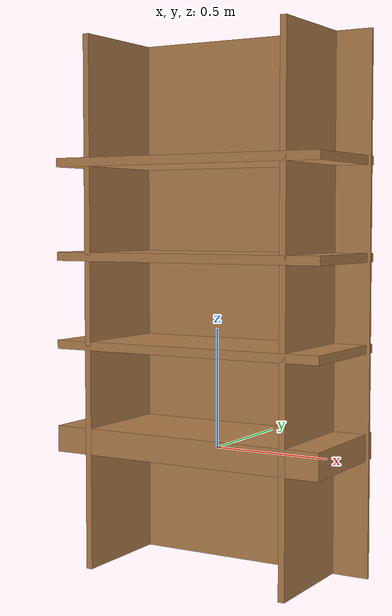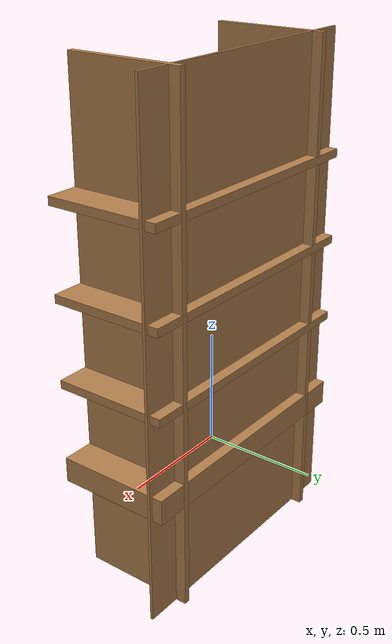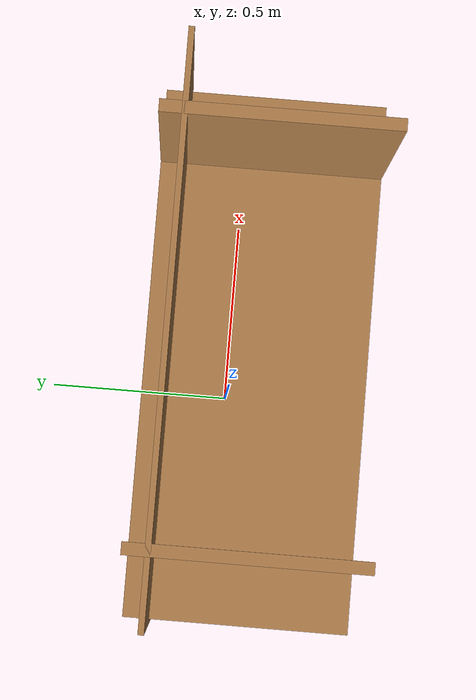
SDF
<?xml version='1.0'?>
<sdf version='1.7'>
  <model name='bookshelf'>
    <link name='link'>
      <inertial>
        <mass>3.22344</mass>
        <inertia>
          <ixx>0.0694544</ixx>
          <ixy>0</ixy>
          <ixz>0</ixz>
          <iyy>0.393153</iyy>
          <iyz>0</iyz>
          <izz>0.461871</izz>
        </inertia>
        <pose>0 0 0 0 -0 0</pose>
      </inertial>
      <self_collide>0</self_collide>
      <enable_wind>0</enable_wind>
      <kinematic>0</kinematic>
      <pose>0 0.152248 0 0 -0 0</pose>
      <visual name='visual1'>
        <pose>0 0.005 0.6 0 -0 0</pose>
        <geometry>
          <box>
            <size>1.23672 0.012678 2.21818</size>
          </box>
        </geometry>
        <material>
          <script>
            <uri>file://media/materials/scripts/gazebo.material</uri>
            <name>Gazebo/Wood</name>
          </script>
          <shader type='pixel'/>
        </material>
        <transparency>0</transparency>
        <cast_shadows>1</cast_shadows>
      </visual>
      <visual name='visual2'>
        <pose>0.45 -0.195 0.6 0 -0 0</pose>
        <geometry>
          <box>
            <size>0.027117 0.507139 2.21818</size>
          </box>
        </geometry>
        <material>
          <script>
            <uri>file://media/materials/scripts/gazebo.material</uri>
            <name>Gazebo/Wood</name>
          </script>
          <shader type='pixel'/>
        </material>
        <transparency>0</transparency>
        <cast_shadows>1</cast_shadows>
      </visual>
      <visual name='visual3'>
        <pose>-0.45 -0.195 0.6 0 -0 0</pose>
        <geometry>
          <box>
            <size>0.027117 0.507139 2.21818</size>
          </box>
        </geometry>
        <material>
          <script>
            <uri>file://media/materials/scripts/gazebo.material</uri>
            <name>Gazebo/Wood</name>
          </script>
          <shader type='pixel'/>
        </material>
        <transparency>0</transparency>
        <cast_shadows>1</cast_shadows>
      </visual>
      <visual name='visual4'>
        <pose>0 -0.195 0.03 0 -0 0</pose>
        <geometry>
          <box>
            <size>1.20923 0.507139 0.1109</size>
          </box>
        </geometry>
        <material>
          <script>
            <uri>file://media/materials/scripts/gazebo.material</uri>
            <name>Gazebo/Wood</name>
          </script>
          <shader type='pixel'/>
        </material>
        <transparency>0</transparency>
        <cast_shadows>1</cast_shadows>
      </visual>
      <visual name='visual5'>
        <pose>0 -0.195 1.19 0 -0 0</pose>
        <geometry>
          <box>
            <size>1.20923 0.507139 0.03702</size>
          </box>
        </geometry>
        <material>
          <script>
            <uri>file://media/materials/scripts/gazebo.material</uri>
            <name>Gazebo/Wood</name>
          </script>
          <shader type='pixel'/>
        </material>
        <transparency>0</transparency>
        <cast_shadows>1</cast_shadows>
      </visual>
      <visual name='visual6'>
        <pose>0 -0.195 0.43 0 -0 0</pose>
        <geometry>
          <box>
            <size>1.20923 0.507139 0.03702</size>
          </box>
        </geometry>
        <material>
          <script>
            <uri>file://media/materials/scripts/gazebo.material</uri>
            <name>Gazebo/Wood</name>
          </script>
          <shader type='pixel'/>
        </material>
        <transparency>0</transparency>
        <cast_shadows>1</cast_shadows>
      </visual>
      <visual name='visual7'>
        <pose>0 -0.195 0.8 0 -0 0</pose>
        <geometry>
          <box>
            <size>1.20923 0.507139 0.03702</size>
          </box>
        </geometry>
        <material>
          <script>
            <uri>file://media/materials/scripts/gazebo.material</uri>
            <name>Gazebo/Wood</name>
          </script>
          <shader type='pixel'/>
        </material>
        <transparency>0</transparency>
        <cast_shadows>1</cast_shadows>
      </visual>
      <collision name='back'>
        <laser_retro>0</laser_retro>
        <max_contacts>10</max_contacts>
        <pose>0 0.005 0.6 0 -0 0</pose>
        <geometry>
          <box>
            <size>1.23672 0.012678 2.21818</size>
          </box>
        </geometry>
        <surface>
          <friction>
            <ode>
              <mu>1</mu>
              <mu2>1</mu2>
              <fdir1>0 0 0</fdir1>
              <slip1>0</slip1>
              <slip2>0</slip2>
            </ode>
            <torsional>
              <coefficient>1</coefficient>
              <patch_radius>0</patch_radius>
              <surface_radius>0</surface_radius>
              <use_patch_radius>1</use_patch_radius>
              <ode>
                <slip>0</slip>
              </ode>
            </torsional>
          </friction>
          <bounce>
            <restitution_coefficient>0</restitution_coefficient>
            <threshold>1e+06</threshold>
          </bounce>
          <contact>
            <collide_without_contact>0</collide_without_contact>
            <collide_without_contact_bitmask>1</collide_without_contact_bitmask>
            <collide_bitmask>1</collide_bitmask>
            <ode>
              <soft_cfm>0</soft_cfm>
              <soft_erp>0.2</soft_erp>
              <kp>1e+13</kp>
              <kd>1</kd>
              <max_vel>0.01</max_vel>
              <min_depth>0</min_depth>
            </ode>
            <bullet>
              <split_impulse>1</split_impulse>
              <split_impulse_penetration_threshold>-0.01</split_impulse_penetration_threshold>
              <soft_cfm>0</soft_cfm>
              <soft_erp>0.2</soft_erp>
              <kp>1e+13</kp>
              <kd>1</kd>
            </bullet>
          </contact>
        </surface>
      </collision>
      <collision name='left_side'>
        <laser_retro>0</laser_retro>
        <max_contacts>10</max_contacts>
        <pose>0.45 -0.195 0.6 0 -0 0</pose>
        <geometry>
          <box>
            <size>0.027117 0.507139 2.21818</size>
          </box>
        </geometry>
        <surface>
          <friction>
            <ode>
              <mu>1</mu>
              <mu2>1</mu2>
              <fdir1>0 0 0</fdir1>
              <slip1>0</slip1>
              <slip2>0</slip2>
            </ode>
            <torsional>
              <coefficient>1</coefficient>
              <patch_radius>0</patch_radius>
              <surface_radius>0</surface_radius>
              <use_patch_radius>1</use_patch_radius>
              <ode>
                <slip>0</slip>
              </ode>
            </torsional>
          </friction>
          <bounce>
            <restitution_coefficient>0</restitution_coefficient>
            <threshold>1e+06</threshold>
          </bounce>
          <contact>
            <collide_without_contact>0</collide_without_contact>
            <collide_without_contact_bitmask>1</collide_without_contact_bitmask>
            <collide_bitmask>1</collide_bitmask>
            <ode>
              <soft_cfm>0</soft_cfm>
              <soft_erp>0.2</soft_erp>
              <kp>1e+13</kp>
              <kd>1</kd>
              <max_vel>0.01</max_vel>
              <min_depth>0</min_depth>
            </ode>
            <bullet>
              <split_impulse>1</split_impulse>
              <split_impulse_penetration_threshold>-0.01</split_impulse_penetration_threshold>
              <soft_cfm>0</soft_cfm>
              <soft_erp>0.2</soft_erp>
              <kp>1e+13</kp>
              <kd>1</kd>
            </bullet>
          </contact>
        </surface>
      </collision>
      <collision name='right_side'>
        <laser_retro>0</laser_retro>
        <max_contacts>10</max_contacts>
        <pose>-0.45 -0.195 0.6 0 -0 0</pose>
        <geometry>
          <box>
            <size>0.027117 0.507139 2.21818</size>
          </box>
        </geometry>
        <surface>
          <friction>
            <ode>
              <mu>1</mu>
              <mu2>1</mu2>
              <fdir1>0 0 0</fdir1>
              <slip1>0</slip1>
              <slip2>0</slip2>
            </ode>
            <torsional>
              <coefficient>1</coefficient>
              <patch_radius>0</patch_radius>
              <surface_radius>0</surface_radius>
              <use_patch_radius>1</use_patch_radius>
              <ode>
                <slip>0</slip>
              </ode>
            </torsional>
          </friction>
          <bounce>
            <restitution_coefficient>0</restitution_coefficient>
            <threshold>1e+06</threshold>
          </bounce>
          <contact>
            <collide_without_contact>0</collide_without_contact>
            <collide_without_contact_bitmask>1</collide_without_contact_bitmask>
            <collide_bitmask>1</collide_bitmask>
            <ode>
              <soft_cfm>0</soft_cfm>
              <soft_erp>0.2</soft_erp>
              <kp>1e+13</kp>
              <kd>1</kd>
              <max_vel>0.01</max_vel>
              <min_depth>0</min_depth>
            </ode>
            <bullet>
              <split_impulse>1</split_impulse>
              <split_impulse_penetration_threshold>-0.01</split_impulse_penetration_threshold>
              <soft_cfm>0</soft_cfm>
              <soft_erp>0.2</soft_erp>
              <kp>1e+13</kp>
              <kd>1</kd>
            </bullet>
          </contact>
        </surface>
      </collision>
      <collision name='bottom'>
        <laser_retro>0</laser_retro>
        <max_contacts>10</max_contacts>
        <pose>0 -0.195 0.03 0 -0 0</pose>
        <geometry>
          <box>
            <size>1.20923 0.507139 0.1109</size>
          </box>
        </geometry>
        <surface>
          <friction>
            <ode>
              <mu>1</mu>
              <mu2>1</mu2>
              <fdir1>0 0 0</fdir1>
              <slip1>0</slip1>
              <slip2>0</slip2>
            </ode>
            <torsional>
              <coefficient>1</coefficient>
              <patch_radius>0</patch_radius>
              <surface_radius>0</surface_radius>
              <use_patch_radius>1</use_patch_radius>
              <ode>
                <slip>0</slip>
              </ode>
            </torsional>
          </friction>
          <bounce>
            <restitution_coefficient>0</restitution_coefficient>
            <threshold>1e+06</threshold>
          </bounce>
          <contact>
            <collide_without_contact>0</collide_without_contact>
            <collide_without_contact_bitmask>1</collide_without_contact_bitmask>
            <collide_bitmask>1</collide_bitmask>
            <ode>
              <soft_cfm>0</soft_cfm>
              <soft_erp>0.2</soft_erp>
              <kp>1e+13</kp>
              <kd>1</kd>
              <max_vel>0.01</max_vel>
              <min_depth>0</min_depth>
            </ode>
            <bullet>
              <split_impulse>1</split_impulse>
              <split_impulse_penetration_threshold>-0.01</split_impulse_penetration_threshold>
              <soft_cfm>0</soft_cfm>
              <soft_erp>0.2</soft_erp>
              <kp>1e+13</kp>
              <kd>1</kd>
            </bullet>
          </contact>
        </surface>
      </collision>
      <collision name='top'>
        <laser_retro>0</laser_retro>
        <max_contacts>10</max_contacts>
        <pose>0 -0.195 1.19 0 -0 0</pose>
        <geometry>
          <box>
            <size>1.20923 0.507139 0.03702</size>
          </box>
        </geometry>
        <surface>
          <friction>
            <ode>
              <mu>1</mu>
              <mu2>1</mu2>
              <fdir1>0 0 0</fdir1>
              <slip1>0</slip1>
              <slip2>0</slip2>
            </ode>
            <torsional>
              <coefficient>1</coefficient>
              <patch_radius>0</patch_radius>
              <surface_radius>0</surface_radius>
              <use_patch_radius>1</use_patch_radius>
              <ode>
                <slip>0</slip>
              </ode>
            </torsional>
          </friction>
          <bounce>
            <restitution_coefficient>0</restitution_coefficient>
            <threshold>1e+06</threshold>
          </bounce>
          <contact>
            <collide_without_contact>0</collide_without_contact>
            <collide_without_contact_bitmask>1</collide_without_contact_bitmask>
            <collide_bitmask>1</collide_bitmask>
            <ode>
              <soft_cfm>0</soft_cfm>
              <soft_erp>0.2</soft_erp>
              <kp>1e+13</kp>
              <kd>1</kd>
              <max_vel>0.01</max_vel>
              <min_depth>0</min_depth>
            </ode>
            <bullet>
              <split_impulse>1</split_impulse>
              <split_impulse_penetration_threshold>-0.01</split_impulse_penetration_threshold>
              <soft_cfm>0</soft_cfm>
              <soft_erp>0.2</soft_erp>
              <kp>1e+13</kp>
              <kd>1</kd>
            </bullet>
          </contact>
        </surface>
      </collision>
      <collision name='low_shelf'>
        <laser_retro>0</laser_retro>
        <max_contacts>10</max_contacts>
        <pose>0 -0.195 0.43 0 -0 0</pose>
        <geometry>
          <box>
            <size>1.20923 0.507139 0.03702</size>
          </box>
        </geometry>
        <surface>
          <friction>
            <ode>
              <mu>1</mu>
              <mu2>1</mu2>
              <fdir1>0 0 0</fdir1>
              <slip1>0</slip1>
              <slip2>0</slip2>
            </ode>
            <torsional>
              <coefficient>1</coefficient>
              <patch_radius>0</patch_radius>
              <surface_radius>0</surface_radius>
              <use_patch_radius>1</use_patch_radius>
              <ode>
                <slip>0</slip>
              </ode>
            </torsional>
          </friction>
          <bounce>
            <restitution_coefficient>0</restitution_coefficient>
            <threshold>1e+06</threshold>
          </bounce>
          <contact>
            <collide_without_contact>0</collide_without_contact>
            <collide_without_contact_bitmask>1</collide_without_contact_bitmask>
            <collide_bitmask>1</collide_bitmask>
            <ode>
              <soft_cfm>0</soft_cfm>
              <soft_erp>0.2</soft_erp>
              <kp>1e+13</kp>
              <kd>1</kd>
              <max_vel>0.01</max_vel>
              <min_depth>0</min_depth>
            </ode>
            <bullet>
              <split_impulse>1</split_impulse>
              <split_impulse_penetration_threshold>-0.01</split_impulse_penetration_threshold>
              <soft_cfm>0</soft_cfm>
              <soft_erp>0.2</soft_erp>
              <kp>1e+13</kp>
              <kd>1</kd>
            </bullet>
          </contact>
        </surface>
      </collision>
      <collision name='high_shelf'>
        <laser_retro>0</laser_retro>
        <max_contacts>10</max_contacts>
        <pose>0 -0.195 0.8 0 -0 0</pose>
        <geometry>
          <box>
            <size>1.20923 0.507139 0.03702</size>
          </box>
        </geometry>
        <surface>
          <friction>
            <ode>
              <mu>1</mu>
              <mu2>1</mu2>
              <fdir1>0 0 0</fdir1>
              <slip1>0</slip1>
              <slip2>0</slip2>
            </ode>
            <torsional>
              <coefficient>1</coefficient>
              <patch_radius>0</patch_radius>
              <surface_radius>0</surface_radius>
              <use_patch_radius>1</use_patch_radius>
              <ode>
                <slip>0</slip>
              </ode>
            </torsional>
          </friction>
          <bounce>
            <restitution_coefficient>0</restitution_coefficient>
            <threshold>1e+06</threshold>
          </bounce>
          <contact>
            <collide_without_contact>0</collide_without_contact>
            <collide_without_contact_bitmask>1</collide_without_contact_bitmask>
            <collide_bitmask>1</collide_bitmask>
            <ode>
              <soft_cfm>0</soft_cfm>
              <soft_erp>0.2</soft_erp>
              <kp>1e+13</kp>
              <kd>1</kd>
              <max_vel>0.01</max_vel>
              <min_depth>0</min_depth>
            </ode>
            <bullet>
              <split_impulse>1</split_impulse>
              <split_impulse_penetration_threshold>-0.01</split_impulse_penetration_threshold>
              <soft_cfm>0</soft_cfm>
              <soft_erp>0.2</soft_erp>
              <kp>1e+13</kp>
              <kd>1</kd>
            </bullet>
          </contact>
        </surface>
      </collision>
    </link>
    <static>0</static>
    <allow_auto_disable>1</allow_auto_disable>
  </model>
</sdf>
